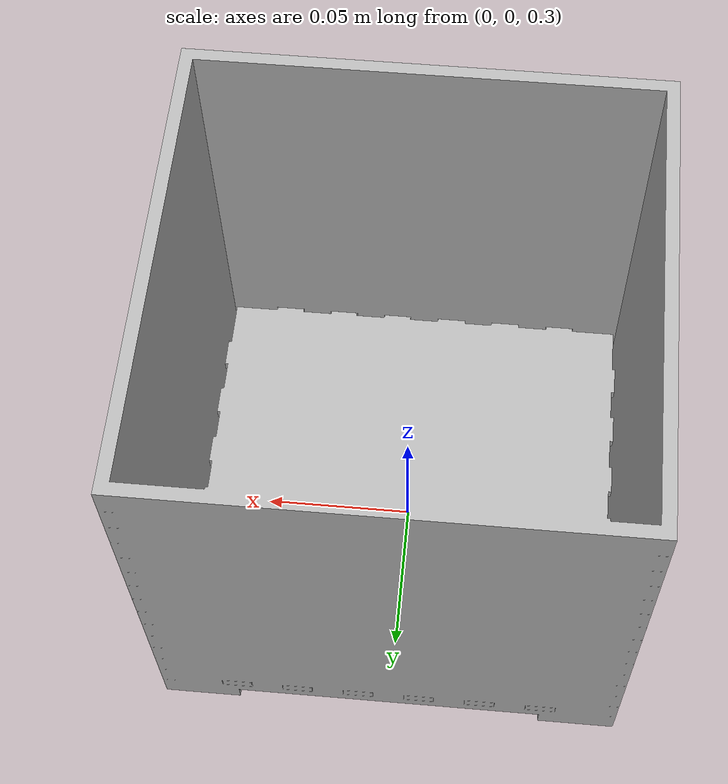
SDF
<?xml version="1.0" ?>
<sdf version="1.6">
  <model name="corbeille">
    <static>true</static>
    <pose>0 0.0 0.305 0 -0 0</pose>
    <link name="link">
      <collision name="collision">
      <pose>0 0 0.075 0 0 0 </pose>
        <geometry>
          <box>
	          <size>0.15 0.15 0.15</size>
          </box>
        </geometry>
      </collision>
      <visual name="visual">
        <pose>0 0.0 0.01 -4.72 0 0 </pose>
        <geometry>
          <mesh>
	          <scale>0.001 0.001 0.001</scale>
            <uri>model://corbeille/meshes/CORBEILLE.stl</uri>
          </mesh>
        </geometry>
      </visual>
    </link>
  </model>
</sdf>
